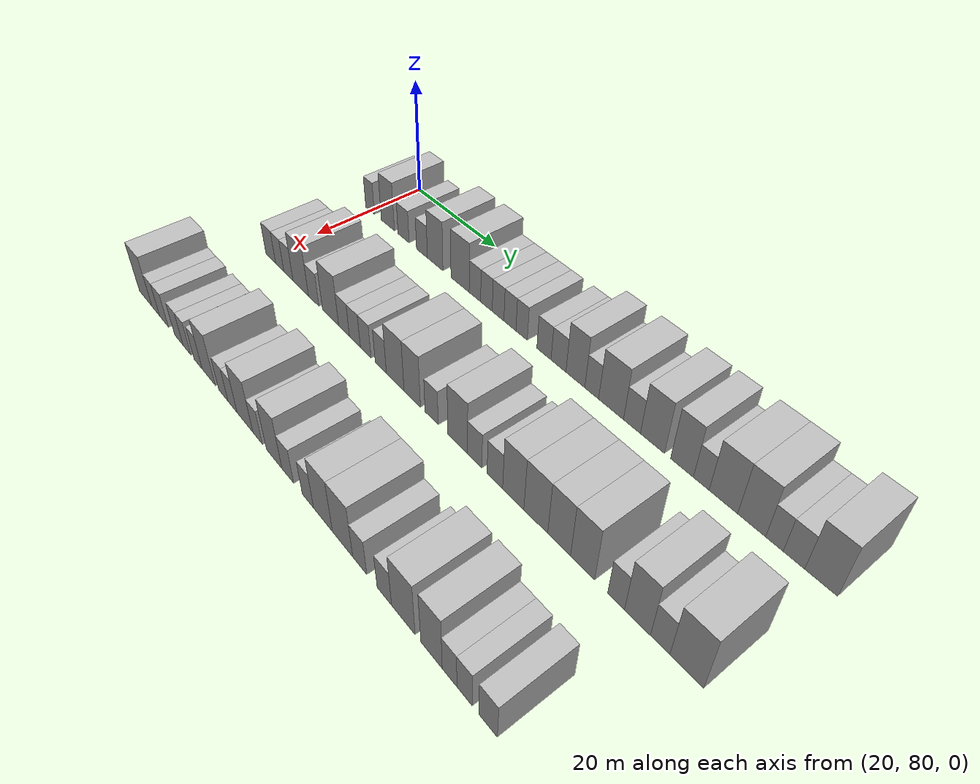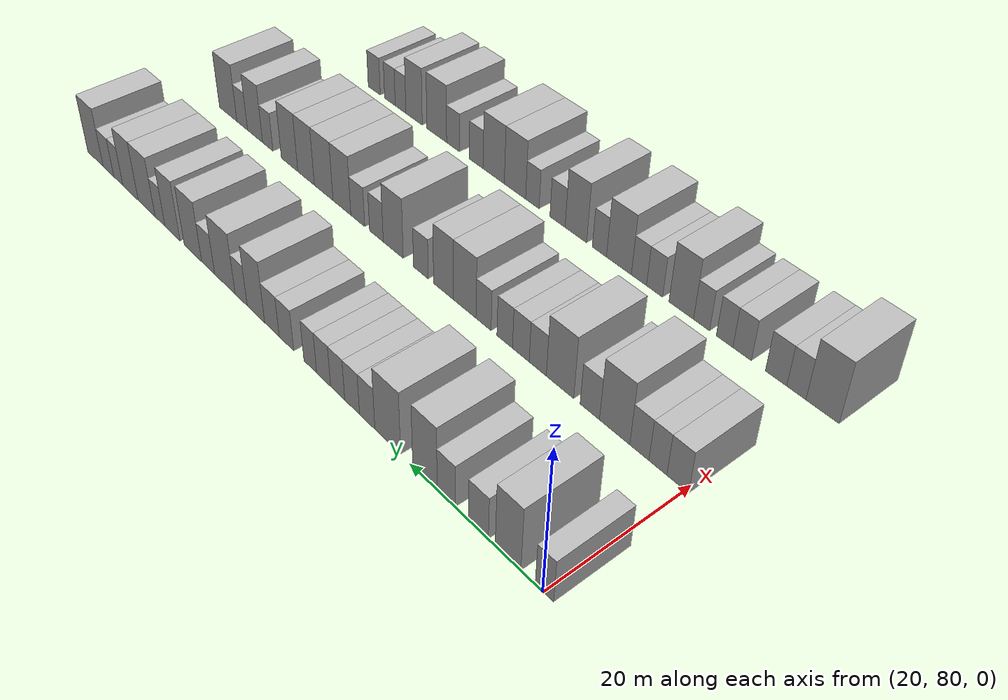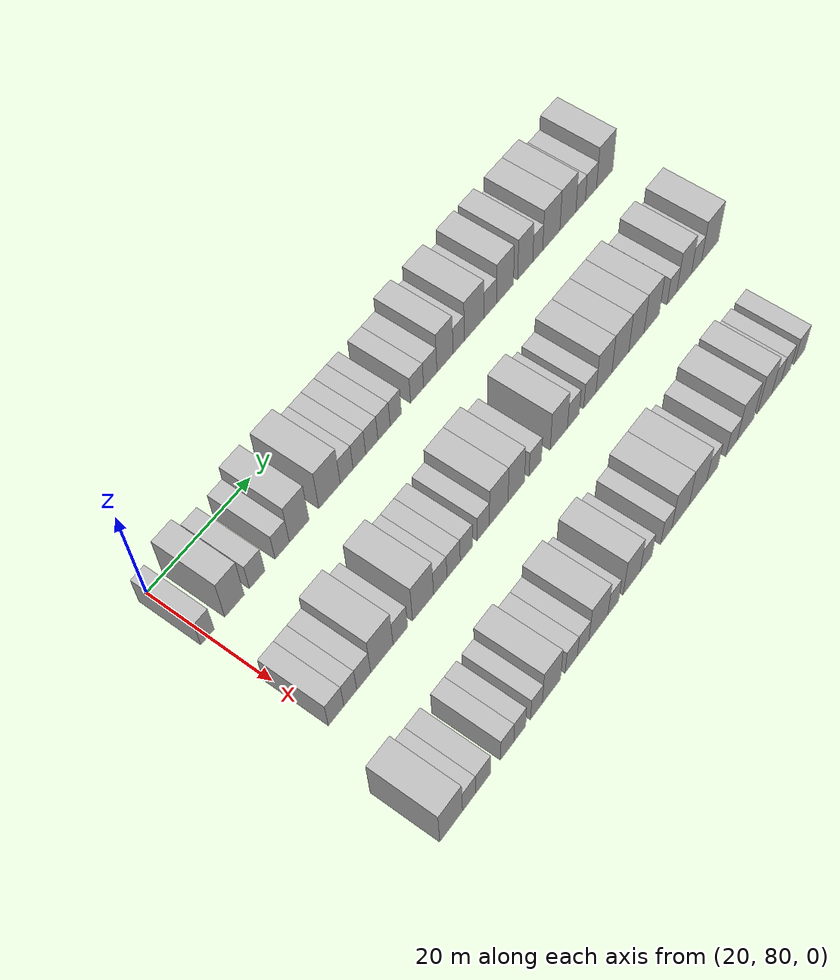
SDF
<sdf version="1.6">
 <world name="default">
  <model name="building_107">
   <static>1</static>
   <pose>25.0000 79.8684 0 0.000000 0.000000 0.000000</pose>
   <link name="link">
    <pose>0 0 3.00 0 0 0</pose>
    <collision name="collision"><geometry><box><size>10.0000 2.5165 6.0000</size></box></geometry></collision>
    <visual name="visual">
     <cast_shadows>0</cast_shadows>
     <geometry><box><size>10.0000 2.5165 6.0000</size></box></geometry>
     <material>
      <script>
       <uri>model://HANNAS_wall/materials/scripts</uri>
       <uri>model://HANNAS_wall/materials/textures</uri>
       <name>vrc/HANNAS_wall</name>
      </script>
     </material>
    </visual>
   </link>
  </model>
  <model name="building_108">
   <static>1</static>
   <pose>25.0000 84.9809 0 0.000000 0.000000 0.000000</pose>
   <link name="link">
    <pose>0 0 4.50 0 0 0</pose>
    <collision name="collision"><geometry><box><size>10.0000 3.7086 9.0000</size></box></geometry></collision>
    <visual name="visual">
     <cast_shadows>0</cast_shadows>
     <geometry><box><size>10.0000 3.7086 9.0000</size></box></geometry>
     <material>
      <script>
       <uri>model://HANNAS_wall/materials/scripts</uri>
       <uri>model://HANNAS_wall/materials/textures</uri>
       <name>vrc/HANNAS_wall</name>
      </script>
     </material>
    </visual>
   </link>
  </model>
  <model name="building_109">
   <static>1</static>
   <pose>25.0000 89.3344 0 0.000000 0.000000 0.000000</pose>
   <link name="link">
    <pose>0 0 3.00 0 0 0</pose>
    <collision name="collision"><geometry><box><size>10.0000 2.9984 6.0000</size></box></geometry></collision>
    <visual name="visual">
     <cast_shadows>0</cast_shadows>
     <geometry><box><size>10.0000 2.9984 6.0000</size></box></geometry>
     <material>
      <script>
       <uri>model://HANNAS_wall/materials/scripts</uri>
       <uri>model://HANNAS_wall/materials/textures</uri>
       <name>vrc/HANNAS_wall</name>
      </script>
     </material>
    </visual>
   </link>
  </model>
  <model name="building_110">
   <static>1</static>
   <pose>25.0000 94.2541 0 0.000000 0.000000 0.000000</pose>
   <link name="link">
    <pose>0 0 3.00 0 0 0</pose>
    <collision name="collision"><geometry><box><size>10.0000 2.8410 6.0000</size></box></geometry></collision>
    <visual name="visual">
     <cast_shadows>0</cast_shadows>
     <geometry><box><size>10.0000 2.8410 6.0000</size></box></geometry>
     <material>
      <script>
       <uri>model://HANNAS_wall/materials/scripts</uri>
       <uri>model://HANNAS_wall/materials/textures</uri>
       <name>vrc/HANNAS_wall</name>
      </script>
     </material>
    </visual>
   </link>
  </model>
  <model name="building_111">
   <static>1</static>
   <pose>25.0000 97.6436 0 0.000000 0.000000 0.000000</pose>
   <link name="link">
    <pose>0 0 4.50 0 0 0</pose>
    <collision name="collision"><geometry><box><size>10.0000 3.9379 9.0000</size></box></geometry></collision>
    <visual name="visual">
     <cast_shadows>0</cast_shadows>
     <geometry><box><size>10.0000 3.9379 9.0000</size></box></geometry>
     <material>
      <script>
       <uri>model://HANNAS_wall/materials/scripts</uri>
       <uri>model://HANNAS_wall/materials/textures</uri>
       <name>vrc/HANNAS_wall</name>
      </script>
     </material>
    </visual>
   </link>
  </model>
  <model name="building_112">
   <static>1</static>
   <pose>25.0000 103.8052 0 0.000000 0.000000 0.000000</pose>
   <link name="link">
    <pose>0 0 4.50 0 0 0</pose>
    <collision name="collision"><geometry><box><size>10.0000 4.3853 9.0000</size></box></geometry></collision>
    <visual name="visual">
     <cast_shadows>0</cast_shadows>
     <geometry><box><size>10.0000 4.3853 9.0000</size></box></geometry>
     <material>
      <script>
       <uri>model://HANNAS_wall/materials/scripts</uri>
       <uri>model://HANNAS_wall/materials/textures</uri>
       <name>vrc/HANNAS_wall</name>
      </script>
     </material>
    </visual>
   </link>
  </model>
  <model name="building_113">
   <static>1</static>
   <pose>25.0000 107.3430 0 0.000000 0.000000 0.000000</pose>
   <link name="link">
    <pose>0 0 3.00 0 0 0</pose>
    <collision name="collision"><geometry><box><size>10.0000 2.6902 6.0000</size></box></geometry></collision>
    <visual name="visual">
     <cast_shadows>0</cast_shadows>
     <geometry><box><size>10.0000 2.6902 6.0000</size></box></geometry>
     <material>
      <script>
       <uri>model://HANNAS_wall/materials/scripts</uri>
       <uri>model://HANNAS_wall/materials/textures</uri>
       <name>vrc/HANNAS_wall</name>
      </script>
     </material>
    </visual>
   </link>
  </model>
  <model name="building_114">
   <static>1</static>
   <pose>25.0000 110.0168 0 0.000000 0.000000 0.000000</pose>
   <link name="link">
    <pose>0 0 3.00 0 0 0</pose>
    <collision name="collision"><geometry><box><size>10.0000 2.6574 6.0000</size></box></geometry></collision>
    <visual name="visual">
     <cast_shadows>0</cast_shadows>
     <geometry><box><size>10.0000 2.6574 6.0000</size></box></geometry>
     <material>
      <script>
       <uri>model://HANNAS_wall/materials/scripts</uri>
       <uri>model://HANNAS_wall/materials/textures</uri>
       <name>vrc/HANNAS_wall</name>
      </script>
     </material>
    </visual>
   </link>
  </model>
  <model name="building_115">
   <static>1</static>
   <pose>25.0000 112.6450 0 0.000000 0.000000 0.000000</pose>
   <link name="link">
    <pose>0 0 3.00 0 0 0</pose>
    <collision name="collision"><geometry><box><size>10.0000 2.5992 6.0000</size></box></geometry></collision>
    <visual name="visual">
     <cast_shadows>0</cast_shadows>
     <geometry><box><size>10.0000 2.5992 6.0000</size></box></geometry>
     <material>
      <script>
       <uri>model://HANNAS_wall/materials/scripts</uri>
       <uri>model://HANNAS_wall/materials/textures</uri>
       <name>vrc/HANNAS_wall</name>
      </script>
     </material>
    </visual>
   </link>
  </model>
  <model name="building_116">
   <static>1</static>
   <pose>25.0000 115.2576 0 0.000000 0.000000 0.000000</pose>
   <link name="link">
    <pose>0 0 3.00 0 0 0</pose>
    <collision name="collision"><geometry><box><size>10.0000 2.6260 6.0000</size></box></geometry></collision>
    <visual name="visual">
     <cast_shadows>0</cast_shadows>
     <geometry><box><size>10.0000 2.6260 6.0000</size></box></geometry>
     <material>
      <script>
       <uri>model://HANNAS_wall/materials/scripts</uri>
       <uri>model://HANNAS_wall/materials/textures</uri>
       <name>vrc/HANNAS_wall</name>
      </script>
     </material>
    </visual>
   </link>
  </model>
  <model name="building_117">
   <static>1</static>
   <pose>25.0000 117.7822 0 0.000000 0.000000 0.000000</pose>
   <link name="link">
    <pose>0 0 3.00 0 0 0</pose>
    <collision name="collision"><geometry><box><size>10.0000 2.4232 6.0000</size></box></geometry></collision>
    <visual name="visual">
     <cast_shadows>0</cast_shadows>
     <geometry><box><size>10.0000 2.4232 6.0000</size></box></geometry>
     <material>
      <script>
       <uri>model://HANNAS_wall/materials/scripts</uri>
       <uri>model://HANNAS_wall/materials/textures</uri>
       <name>vrc/HANNAS_wall</name>
      </script>
     </material>
    </visual>
   </link>
  </model>
  <model name="building_118">
   <static>1</static>
   <pose>25.0000 122.4349 0 0.000000 0.000000 0.000000</pose>
   <link name="link">
    <pose>0 0 3.00 0 0 0</pose>
    <collision name="collision"><geometry><box><size>10.0000 2.8821 6.0000</size></box></geometry></collision>
    <visual name="visual">
     <cast_shadows>0</cast_shadows>
     <geometry><box><size>10.0000 2.8821 6.0000</size></box></geometry>
     <material>
      <script>
       <uri>model://HANNAS_wall/materials/scripts</uri>
       <uri>model://HANNAS_wall/materials/textures</uri>
       <name>vrc/HANNAS_wall</name>
      </script>
     </material>
    </visual>
   </link>
  </model>
  <model name="building_119">
   <static>1</static>
   <pose>25.0000 125.3614 0 0.000000 0.000000 0.000000</pose>
   <link name="link">
    <pose>0 0 3.00 0 0 0</pose>
    <collision name="collision"><geometry><box><size>10.0000 2.9710 6.0000</size></box></geometry></collision>
    <visual name="visual">
     <cast_shadows>0</cast_shadows>
     <geometry><box><size>10.0000 2.9710 6.0000</size></box></geometry>
     <material>
      <script>
       <uri>model://HANNAS_wall/materials/scripts</uri>
       <uri>model://HANNAS_wall/materials/textures</uri>
       <name>vrc/HANNAS_wall</name>
      </script>
     </material>
    </visual>
   </link>
  </model>
  <model name="building_120">
   <static>1</static>
   <pose>25.0000 128.6660 0 0.000000 0.000000 0.000000</pose>
   <link name="link">
    <pose>0 0 4.50 0 0 0</pose>
    <collision name="collision"><geometry><box><size>10.0000 3.6383 9.0000</size></box></geometry></collision>
    <visual name="visual">
     <cast_shadows>0</cast_shadows>
     <geometry><box><size>10.0000 3.6383 9.0000</size></box></geometry>
     <material>
      <script>
       <uri>model://HANNAS_wall/materials/scripts</uri>
       <uri>model://HANNAS_wall/materials/textures</uri>
       <name>vrc/HANNAS_wall</name>
      </script>
     </material>
    </visual>
   </link>
  </model>
  <model name="building_121">
   <static>1</static>
   <pose>25.0000 131.7746 0 0.000000 0.000000 0.000000</pose>
   <link name="link">
    <pose>0 0 3.00 0 0 0</pose>
    <collision name="collision"><geometry><box><size>10.0000 2.5788 6.0000</size></box></geometry></collision>
    <visual name="visual">
     <cast_shadows>0</cast_shadows>
     <geometry><box><size>10.0000 2.5788 6.0000</size></box></geometry>
     <material>
      <script>
       <uri>model://HANNAS_wall/materials/scripts</uri>
       <uri>model://HANNAS_wall/materials/textures</uri>
       <name>vrc/HANNAS_wall</name>
      </script>
     </material>
    </visual>
   </link>
  </model>
  <model name="building_122">
   <static>1</static>
   <pose>25.0000 135.3098 0 0.000000 0.000000 0.000000</pose>
   <link name="link">
    <pose>0 0 4.50 0 0 0</pose>
    <collision name="collision"><geometry><box><size>10.0000 4.4916 9.0000</size></box></geometry></collision>
    <visual name="visual">
     <cast_shadows>0</cast_shadows>
     <geometry><box><size>10.0000 4.4916 9.0000</size></box></geometry>
     <material>
      <script>
       <uri>model://HANNAS_wall/materials/scripts</uri>
       <uri>model://HANNAS_wall/materials/textures</uri>
       <name>vrc/HANNAS_wall</name>
      </script>
     </material>
    </visual>
   </link>
  </model>
  <model name="building_123">
   <static>1</static>
   <pose>25.0000 139.0275 0 0.000000 0.000000 0.000000</pose>
   <link name="link">
    <pose>0 0 3.00 0 0 0</pose>
    <collision name="collision"><geometry><box><size>10.0000 2.9438 6.0000</size></box></geometry></collision>
    <visual name="visual">
     <cast_shadows>0</cast_shadows>
     <geometry><box><size>10.0000 2.9438 6.0000</size></box></geometry>
     <material>
      <script>
       <uri>model://HANNAS_wall/materials/scripts</uri>
       <uri>model://HANNAS_wall/materials/textures</uri>
       <name>vrc/HANNAS_wall</name>
      </script>
     </material>
    </visual>
   </link>
  </model>
  <model name="building_124">
   <static>1</static>
   <pose>25.0000 142.5194 0 0.000000 0.000000 0.000000</pose>
   <link name="link">
    <pose>0 0 4.50 0 0 0</pose>
    <collision name="collision"><geometry><box><size>10.0000 4.0399 9.0000</size></box></geometry></collision>
    <visual name="visual">
     <cast_shadows>0</cast_shadows>
     <geometry><box><size>10.0000 4.0399 9.0000</size></box></geometry>
     <material>
      <script>
       <uri>model://HANNAS_wall/materials/scripts</uri>
       <uri>model://HANNAS_wall/materials/textures</uri>
       <name>vrc/HANNAS_wall</name>
      </script>
     </material>
    </visual>
   </link>
  </model>
  <model name="building_125">
   <static>1</static>
   <pose>25.0000 147.3535 0 0.000000 0.000000 0.000000</pose>
   <link name="link">
    <pose>0 0 4.50 0 0 0</pose>
    <collision name="collision"><geometry><box><size>10.0000 3.6283 9.0000</size></box></geometry></collision>
    <visual name="visual">
     <cast_shadows>0</cast_shadows>
     <geometry><box><size>10.0000 3.6283 9.0000</size></box></geometry>
     <material>
      <script>
       <uri>model://HANNAS_wall/materials/scripts</uri>
       <uri>model://HANNAS_wall/materials/textures</uri>
       <name>vrc/HANNAS_wall</name>
      </script>
     </material>
    </visual>
   </link>
  </model>
  <model name="building_126">
   <static>1</static>
   <pose>25.0000 150.3799 0 0.000000 0.000000 0.000000</pose>
   <link name="link">
    <pose>0 0 3.00 0 0 0</pose>
    <collision name="collision"><geometry><box><size>10.0000 2.4246 6.0000</size></box></geometry></collision>
    <visual name="visual">
     <cast_shadows>0</cast_shadows>
     <geometry><box><size>10.0000 2.4246 6.0000</size></box></geometry>
     <material>
      <script>
       <uri>model://HANNAS_wall/materials/scripts</uri>
       <uri>model://HANNAS_wall/materials/textures</uri>
       <name>vrc/HANNAS_wall</name>
      </script>
     </material>
    </visual>
   </link>
  </model>
  <model name="building_127">
   <static>1</static>
   <pose>25.0000 153.7157 0 0.000000 0.000000 0.000000</pose>
   <link name="link">
    <pose>0 0 4.50 0 0 0</pose>
    <collision name="collision"><geometry><box><size>10.0000 4.2469 9.0000</size></box></geometry></collision>
    <visual name="visual">
     <cast_shadows>0</cast_shadows>
     <geometry><box><size>10.0000 4.2469 9.0000</size></box></geometry>
     <material>
      <script>
       <uri>model://HANNAS_wall/materials/scripts</uri>
       <uri>model://HANNAS_wall/materials/textures</uri>
       <name>vrc/HANNAS_wall</name>
      </script>
     </material>
    </visual>
   </link>
  </model>
  <model name="building_128">
   <static>1</static>
   <pose>25.0000 157.8291 0 0.000000 0.000000 0.000000</pose>
   <link name="link">
    <pose>0 0 4.50 0 0 0</pose>
    <collision name="collision"><geometry><box><size>10.0000 3.9800 9.0000</size></box></geometry></collision>
    <visual name="visual">
     <cast_shadows>0</cast_shadows>
     <geometry><box><size>10.0000 3.9800 9.0000</size></box></geometry>
     <material>
      <script>
       <uri>model://HANNAS_wall/materials/scripts</uri>
       <uri>model://HANNAS_wall/materials/textures</uri>
       <name>vrc/HANNAS_wall</name>
      </script>
     </material>
    </visual>
   </link>
  </model>
  <model name="building_129">
   <static>1</static>
   <pose>25.0000 161.0231 0 0.000000 0.000000 0.000000</pose>
   <link name="link">
    <pose>0 0 3.00 0 0 0</pose>
    <collision name="collision"><geometry><box><size>10.0000 2.4081 6.0000</size></box></geometry></collision>
    <visual name="visual">
     <cast_shadows>0</cast_shadows>
     <geometry><box><size>10.0000 2.4081 6.0000</size></box></geometry>
     <material>
      <script>
       <uri>model://HANNAS_wall/materials/scripts</uri>
       <uri>model://HANNAS_wall/materials/textures</uri>
       <name>vrc/HANNAS_wall</name>
      </script>
     </material>
    </visual>
   </link>
  </model>
  <model name="building_130">
   <static>1</static>
   <pose>25.0000 163.6570 0 0.000000 0.000000 0.000000</pose>
   <link name="link">
    <pose>0 0 3.00 0 0 0</pose>
    <collision name="collision"><geometry><box><size>10.0000 2.8596 6.0000</size></box></geometry></collision>
    <visual name="visual">
     <cast_shadows>0</cast_shadows>
     <geometry><box><size>10.0000 2.8596 6.0000</size></box></geometry>
     <material>
      <script>
       <uri>model://HANNAS_wall/materials/scripts</uri>
       <uri>model://HANNAS_wall/materials/textures</uri>
       <name>vrc/HANNAS_wall</name>
      </script>
     </material>
    </visual>
   </link>
  </model>
  <model name="building_131">
   <static>1</static>
   <pose>25.0000 167.1961 0 0.000000 0.000000 0.000000</pose>
   <link name="link">
    <pose>0 0 4.50 0 0 0</pose>
    <collision name="collision"><geometry><box><size>10.0000 4.2186 9.0000</size></box></geometry></collision>
    <visual name="visual">
     <cast_shadows>0</cast_shadows>
     <geometry><box><size>10.0000 4.2186 9.0000</size></box></geometry>
     <material>
      <script>
       <uri>model://HANNAS_wall/materials/scripts</uri>
       <uri>model://HANNAS_wall/materials/textures</uri>
       <name>vrc/HANNAS_wall</name>
      </script>
     </material>
    </visual>
   </link>
  </model>
  <model name="building_282">
   <static>1</static>
   <pose>44.0000 80.9962 0 0.000000 0.000000 0.000000</pose>
   <link name="link">
    <pose>0 0 3.00 0 0 0</pose>
    <collision name="collision"><geometry><box><size>10.0000 2.9813 6.0000</size></box></geometry></collision>
    <visual name="visual">
     <cast_shadows>0</cast_shadows>
     <geometry><box><size>10.0000 2.9813 6.0000</size></box></geometry>
     <material>
      <script>
       <uri>model://HANNAS_wall/materials/scripts</uri>
       <uri>model://HANNAS_wall/materials/textures</uri>
       <name>vrc/HANNAS_wall</name>
      </script>
     </material>
    </visual>
   </link>
  </model>
  <model name="building_283">
   <static>1</static>
   <pose>44.0000 83.7357 0 0.000000 0.000000 0.000000</pose>
   <link name="link">
    <pose>0 0 3.00 0 0 0</pose>
    <collision name="collision"><geometry><box><size>10.0000 2.4975 6.0000</size></box></geometry></collision>
    <visual name="visual">
     <cast_shadows>0</cast_shadows>
     <geometry><box><size>10.0000 2.4975 6.0000</size></box></geometry>
     <material>
      <script>
       <uri>model://HANNAS_wall/materials/scripts</uri>
       <uri>model://HANNAS_wall/materials/textures</uri>
       <name>vrc/HANNAS_wall</name>
      </script>
     </material>
    </visual>
   </link>
  </model>
  <model name="building_284">
   <static>1</static>
   <pose>44.0000 86.3479 0 0.000000 0.000000 0.000000</pose>
   <link name="link">
    <pose>0 0 3.00 0 0 0</pose>
    <collision name="collision"><geometry><box><size>10.0000 2.7270 6.0000</size></box></geometry></collision>
    <visual name="visual">
     <cast_shadows>0</cast_shadows>
     <geometry><box><size>10.0000 2.7270 6.0000</size></box></geometry>
     <material>
      <script>
       <uri>model://HANNAS_wall/materials/scripts</uri>
       <uri>model://HANNAS_wall/materials/textures</uri>
       <name>vrc/HANNAS_wall</name>
      </script>
     </material>
    </visual>
   </link>
  </model>
  <model name="building_285">
   <static>1</static>
   <pose>44.0000 89.9405 0 0.000000 0.000000 0.000000</pose>
   <link name="link">
    <pose>0 0 4.50 0 0 0</pose>
    <collision name="collision"><geometry><box><size>10.0000 4.4581 9.0000</size></box></geometry></collision>
    <visual name="visual">
     <cast_shadows>0</cast_shadows>
     <geometry><box><size>10.0000 4.4581 9.0000</size></box></geometry>
     <material>
      <script>
       <uri>model://HANNAS_wall/materials/scripts</uri>
       <uri>model://HANNAS_wall/materials/textures</uri>
       <name>vrc/HANNAS_wall</name>
      </script>
     </material>
    </visual>
   </link>
  </model>
  <model name="building_286">
   <static>1</static>
   <pose>44.0000 93.6347 0 0.000000 0.000000 0.000000</pose>
   <link name="link">
    <pose>0 0 3.00 0 0 0</pose>
    <collision name="collision"><geometry><box><size>10.0000 2.9304 6.0000</size></box></geometry></collision>
    <visual name="visual">
     <cast_shadows>0</cast_shadows>
     <geometry><box><size>10.0000 2.9304 6.0000</size></box></geometry>
     <material>
      <script>
       <uri>model://HANNAS_wall/materials/scripts</uri>
       <uri>model://HANNAS_wall/materials/textures</uri>
       <name>vrc/HANNAS_wall</name>
      </script>
     </material>
    </visual>
   </link>
  </model>
  <model name="building_287">
   <static>1</static>
   <pose>44.0000 98.2600 0 0.000000 0.000000 0.000000</pose>
   <link name="link">
    <pose>0 0 4.50 0 0 0</pose>
    <collision name="collision"><geometry><box><size>10.0000 4.3201 9.0000</size></box></geometry></collision>
    <visual name="visual">
     <cast_shadows>0</cast_shadows>
     <geometry><box><size>10.0000 4.3201 9.0000</size></box></geometry>
     <material>
      <script>
       <uri>model://HANNAS_wall/materials/scripts</uri>
       <uri>model://HANNAS_wall/materials/textures</uri>
       <name>vrc/HANNAS_wall</name>
      </script>
     </material>
    </visual>
   </link>
  </model>
  <model name="building_288">
   <static>1</static>
   <pose>44.0000 101.8132 0 0.000000 0.000000 0.000000</pose>
   <link name="link">
    <pose>0 0 3.00 0 0 0</pose>
    <collision name="collision"><geometry><box><size>10.0000 2.7863 6.0000</size></box></geometry></collision>
    <visual name="visual">
     <cast_shadows>0</cast_shadows>
     <geometry><box><size>10.0000 2.7863 6.0000</size></box></geometry>
     <material>
      <script>
       <uri>model://HANNAS_wall/materials/scripts</uri>
       <uri>model://HANNAS_wall/materials/textures</uri>
       <name>vrc/HANNAS_wall</name>
      </script>
     </material>
    </visual>
   </link>
  </model>
  <model name="building_289">
   <static>1</static>
   <pose>44.0000 104.5954 0 0.000000 0.000000 0.000000</pose>
   <link name="link">
    <pose>0 0 3.00 0 0 0</pose>
    <collision name="collision"><geometry><box><size>10.0000 2.7783 6.0000</size></box></geometry></collision>
    <visual name="visual">
     <cast_shadows>0</cast_shadows>
     <geometry><box><size>10.0000 2.7783 6.0000</size></box></geometry>
     <material>
      <script>
       <uri>model://HANNAS_wall/materials/scripts</uri>
       <uri>model://HANNAS_wall/materials/textures</uri>
       <name>vrc/HANNAS_wall</name>
      </script>
     </material>
    </visual>
   </link>
  </model>
  <model name="building_290">
   <static>1</static>
   <pose>44.0000 107.3019 0 0.000000 0.000000 0.000000</pose>
   <link name="link">
    <pose>0 0 3.00 0 0 0</pose>
    <collision name="collision"><geometry><box><size>10.0000 2.6348 6.0000</size></box></geometry></collision>
    <visual name="visual">
     <cast_shadows>0</cast_shadows>
     <geometry><box><size>10.0000 2.6348 6.0000</size></box></geometry>
     <material>
      <script>
       <uri>model://HANNAS_wall/materials/scripts</uri>
       <uri>model://HANNAS_wall/materials/textures</uri>
       <name>vrc/HANNAS_wall</name>
      </script>
     </material>
    </visual>
   </link>
  </model>
  <model name="building_291">
   <static>1</static>
   <pose>44.0000 110.9422 0 0.000000 0.000000 0.000000</pose>
   <link name="link">
    <pose>0 0 3.00 0 0 0</pose>
    <collision name="collision"><geometry><box><size>10.0000 2.6457 6.0000</size></box></geometry></collision>
    <visual name="visual">
     <cast_shadows>0</cast_shadows>
     <geometry><box><size>10.0000 2.6457 6.0000</size></box></geometry>
     <material>
      <script>
       <uri>model://HANNAS_wall/materials/scripts</uri>
       <uri>model://HANNAS_wall/materials/textures</uri>
       <name>vrc/HANNAS_wall</name>
      </script>
     </material>
    </visual>
   </link>
  </model>
  <model name="building_292">
   <static>1</static>
   <pose>44.0000 114.3027 0 0.000000 0.000000 0.000000</pose>
   <link name="link">
    <pose>0 0 4.50 0 0 0</pose>
    <collision name="collision"><geometry><box><size>10.0000 4.0754 9.0000</size></box></geometry></collision>
    <visual name="visual">
     <cast_shadows>0</cast_shadows>
     <geometry><box><size>10.0000 4.0754 9.0000</size></box></geometry>
     <material>
      <script>
       <uri>model://HANNAS_wall/materials/scripts</uri>
       <uri>model://HANNAS_wall/materials/textures</uri>
       <name>vrc/HANNAS_wall</name>
      </script>
     </material>
    </visual>
   </link>
  </model>
  <model name="building_293">
   <static>1</static>
   <pose>44.0000 118.1617 0 0.000000 0.000000 0.000000</pose>
   <link name="link">
    <pose>0 0 4.50 0 0 0</pose>
    <collision name="collision"><geometry><box><size>10.0000 3.6427 9.0000</size></box></geometry></collision>
    <visual name="visual">
     <cast_shadows>0</cast_shadows>
     <geometry><box><size>10.0000 3.6427 9.0000</size></box></geometry>
     <material>
      <script>
       <uri>model://HANNAS_wall/materials/scripts</uri>
       <uri>model://HANNAS_wall/materials/textures</uri>
       <name>vrc/HANNAS_wall</name>
      </script>
     </material>
    </visual>
   </link>
  </model>
  <model name="building_294">
   <static>1</static>
   <pose>44.0000 122.3829 0 0.000000 0.000000 0.000000</pose>
   <link name="link">
    <pose>0 0 3.00 0 0 0</pose>
    <collision name="collision"><geometry><box><size>10.0000 2.7997 6.0000</size></box></geometry></collision>
    <visual name="visual">
     <cast_shadows>0</cast_shadows>
     <geometry><box><size>10.0000 2.7997 6.0000</size></box></geometry>
     <material>
      <script>
       <uri>model://HANNAS_wall/materials/scripts</uri>
       <uri>model://HANNAS_wall/materials/textures</uri>
       <name>vrc/HANNAS_wall</name>
      </script>
     </material>
    </visual>
   </link>
  </model>
  <model name="building_295">
   <static>1</static>
   <pose>44.0000 127.7653 0 0.000000 0.000000 0.000000</pose>
   <link name="link">
    <pose>0 0 4.50 0 0 0</pose>
    <collision name="collision"><geometry><box><size>10.0000 3.9652 9.0000</size></box></geometry></collision>
    <visual name="visual">
     <cast_shadows>0</cast_shadows>
     <geometry><box><size>10.0000 3.9652 9.0000</size></box></geometry>
     <material>
      <script>
       <uri>model://HANNAS_wall/materials/scripts</uri>
       <uri>model://HANNAS_wall/materials/textures</uri>
       <name>vrc/HANNAS_wall</name>
      </script>
     </material>
    </visual>
   </link>
  </model>
  <model name="building_296">
   <static>1</static>
   <pose>44.0000 131.1392 0 0.000000 0.000000 0.000000</pose>
   <link name="link">
    <pose>0 0 3.00 0 0 0</pose>
    <collision name="collision"><geometry><box><size>10.0000 2.7825 6.0000</size></box></geometry></collision>
    <visual name="visual">
     <cast_shadows>0</cast_shadows>
     <geometry><box><size>10.0000 2.7825 6.0000</size></box></geometry>
     <material>
      <script>
       <uri>model://HANNAS_wall/materials/scripts</uri>
       <uri>model://HANNAS_wall/materials/textures</uri>
       <name>vrc/HANNAS_wall</name>
      </script>
     </material>
    </visual>
   </link>
  </model>
  <model name="building_297">
   <static>1</static>
   <pose>44.0000 134.9833 0 0.000000 0.000000 0.000000</pose>
   <link name="link">
    <pose>0 0 3.00 0 0 0</pose>
    <collision name="collision"><geometry><box><size>10.0000 2.9057 6.0000</size></box></geometry></collision>
    <visual name="visual">
     <cast_shadows>0</cast_shadows>
     <geometry><box><size>10.0000 2.9057 6.0000</size></box></geometry>
     <material>
      <script>
       <uri>model://HANNAS_wall/materials/scripts</uri>
       <uri>model://HANNAS_wall/materials/textures</uri>
       <name>vrc/HANNAS_wall</name>
      </script>
     </material>
    </visual>
   </link>
  </model>
  <model name="building_298">
   <static>1</static>
   <pose>44.0000 138.3470 0 0.000000 0.000000 0.000000</pose>
   <link name="link">
    <pose>0 0 4.50 0 0 0</pose>
    <collision name="collision"><geometry><box><size>10.0000 3.8218 9.0000</size></box></geometry></collision>
    <visual name="visual">
     <cast_shadows>0</cast_shadows>
     <geometry><box><size>10.0000 3.8218 9.0000</size></box></geometry>
     <material>
      <script>
       <uri>model://HANNAS_wall/materials/scripts</uri>
       <uri>model://HANNAS_wall/materials/textures</uri>
       <name>vrc/HANNAS_wall</name>
      </script>
     </material>
    </visual>
   </link>
  </model>
  <model name="building_299">
   <static>1</static>
   <pose>44.0000 142.3159 0 0.000000 0.000000 0.000000</pose>
   <link name="link">
    <pose>0 0 4.50 0 0 0</pose>
    <collision name="collision"><geometry><box><size>10.0000 4.1161 9.0000</size></box></geometry></collision>
    <visual name="visual">
     <cast_shadows>0</cast_shadows>
     <geometry><box><size>10.0000 4.1161 9.0000</size></box></geometry>
     <material>
      <script>
       <uri>model://HANNAS_wall/materials/scripts</uri>
       <uri>model://HANNAS_wall/materials/textures</uri>
       <name>vrc/HANNAS_wall</name>
      </script>
     </material>
    </visual>
   </link>
  </model>
  <model name="building_300">
   <static>1</static>
   <pose>44.0000 146.2532 0 0.000000 0.000000 0.000000</pose>
   <link name="link">
    <pose>0 0 4.50 0 0 0</pose>
    <collision name="collision"><geometry><box><size>10.0000 3.7584 9.0000</size></box></geometry></collision>
    <visual name="visual">
     <cast_shadows>0</cast_shadows>
     <geometry><box><size>10.0000 3.7584 9.0000</size></box></geometry>
     <material>
      <script>
       <uri>model://HANNAS_wall/materials/scripts</uri>
       <uri>model://HANNAS_wall/materials/textures</uri>
       <name>vrc/HANNAS_wall</name>
      </script>
     </material>
    </visual>
   </link>
  </model>
  <model name="building_301">
   <static>1</static>
   <pose>44.0000 150.0388 0 0.000000 0.000000 0.000000</pose>
   <link name="link">
    <pose>0 0 4.50 0 0 0</pose>
    <collision name="collision"><geometry><box><size>10.0000 3.8128 9.0000</size></box></geometry></collision>
    <visual name="visual">
     <cast_shadows>0</cast_shadows>
     <geometry><box><size>10.0000 3.8128 9.0000</size></box></geometry>
     <material>
      <script>
       <uri>model://HANNAS_wall/materials/scripts</uri>
       <uri>model://HANNAS_wall/materials/textures</uri>
       <name>vrc/HANNAS_wall</name>
      </script>
     </material>
    </visual>
   </link>
  </model>
  <model name="building_302">
   <static>1</static>
   <pose>44.0000 155.1900 0 0.000000 0.000000 0.000000</pose>
   <link name="link">
    <pose>0 0 3.00 0 0 0</pose>
    <collision name="collision"><geometry><box><size>10.0000 2.4897 6.0000</size></box></geometry></collision>
    <visual name="visual">
     <cast_shadows>0</cast_shadows>
     <geometry><box><size>10.0000 2.4897 6.0000</size></box></geometry>
     <material>
      <script>
       <uri>model://HANNAS_wall/materials/scripts</uri>
       <uri>model://HANNAS_wall/materials/textures</uri>
       <name>vrc/HANNAS_wall</name>
      </script>
     </material>
    </visual>
   </link>
  </model>
  <model name="building_303">
   <static>1</static>
   <pose>44.0000 158.2894 0 0.000000 0.000000 0.000000</pose>
   <link name="link">
    <pose>0 0 4.50 0 0 0</pose>
    <collision name="collision"><geometry><box><size>10.0000 3.7091 9.0000</size></box></geometry></collision>
    <visual name="visual">
     <cast_shadows>0</cast_shadows>
     <geometry><box><size>10.0000 3.7091 9.0000</size></box></geometry>
     <material>
      <script>
       <uri>model://HANNAS_wall/materials/scripts</uri>
       <uri>model://HANNAS_wall/materials/textures</uri>
       <name>vrc/HANNAS_wall</name>
      </script>
     </material>
    </visual>
   </link>
  </model>
  <model name="building_304">
   <static>1</static>
   <pose>44.0000 161.4726 0 0.000000 0.000000 0.000000</pose>
   <link name="link">
    <pose>0 0 3.00 0 0 0</pose>
    <collision name="collision"><geometry><box><size>10.0000 2.6573 6.0000</size></box></geometry></collision>
    <visual name="visual">
     <cast_shadows>0</cast_shadows>
     <geometry><box><size>10.0000 2.6573 6.0000</size></box></geometry>
     <material>
      <script>
       <uri>model://HANNAS_wall/materials/scripts</uri>
       <uri>model://HANNAS_wall/materials/textures</uri>
       <name>vrc/HANNAS_wall</name>
      </script>
     </material>
    </visual>
   </link>
  </model>
  <model name="building_305">
   <static>1</static>
   <pose>44.0000 165.0303 0 0.000000 0.000000 0.000000</pose>
   <link name="link">
    <pose>0 0 4.50 0 0 0</pose>
    <collision name="collision"><geometry><box><size>10.0000 4.4582 9.0000</size></box></geometry></collision>
    <visual name="visual">
     <cast_shadows>0</cast_shadows>
     <geometry><box><size>10.0000 4.4582 9.0000</size></box></geometry>
     <material>
      <script>
       <uri>model://HANNAS_wall/materials/scripts</uri>
       <uri>model://HANNAS_wall/materials/textures</uri>
       <name>vrc/HANNAS_wall</name>
      </script>
     </material>
    </visual>
   </link>
  </model>
  <model name="building_469">
   <static>1</static>
   <pose>63.0000 78.1149 0 0.000000 0.000000 0.000000</pose>
   <link name="link">
    <pose>0 0 4.50 0 0 0</pose>
    <collision name="collision"><geometry><box><size>10.0000 4.4009 9.0000</size></box></geometry></collision>
    <visual name="visual">
     <cast_shadows>0</cast_shadows>
     <geometry><box><size>10.0000 4.4009 9.0000</size></box></geometry>
     <material>
      <script>
       <uri>model://HANNAS_wall/materials/scripts</uri>
       <uri>model://HANNAS_wall/materials/textures</uri>
       <name>vrc/HANNAS_wall</name>
      </script>
     </material>
    </visual>
   </link>
  </model>
  <model name="building_470">
   <static>1</static>
   <pose>63.0000 81.6224 0 0.000000 0.000000 0.000000</pose>
   <link name="link">
    <pose>0 0 3.00 0 0 0</pose>
    <collision name="collision"><geometry><box><size>10.0000 2.6140 6.0000</size></box></geometry></collision>
    <visual name="visual">
     <cast_shadows>0</cast_shadows>
     <geometry><box><size>10.0000 2.6140 6.0000</size></box></geometry>
     <material>
      <script>
       <uri>model://HANNAS_wall/materials/scripts</uri>
       <uri>model://HANNAS_wall/materials/textures</uri>
       <name>vrc/HANNAS_wall</name>
      </script>
     </material>
    </visual>
   </link>
  </model>
  <model name="building_471">
   <static>1</static>
   <pose>63.0000 84.4114 0 0.000000 0.000000 0.000000</pose>
   <link name="link">
    <pose>0 0 3.00 0 0 0</pose>
    <collision name="collision"><geometry><box><size>10.0000 2.9640 6.0000</size></box></geometry></collision>
    <visual name="visual">
     <cast_shadows>0</cast_shadows>
     <geometry><box><size>10.0000 2.9640 6.0000</size></box></geometry>
     <material>
      <script>
       <uri>model://HANNAS_wall/materials/scripts</uri>
       <uri>model://HANNAS_wall/materials/textures</uri>
       <name>vrc/HANNAS_wall</name>
      </script>
     </material>
    </visual>
   </link>
  </model>
  <model name="building_472">
   <static>1</static>
   <pose>63.0000 89.2351 0 0.000000 0.000000 0.000000</pose>
   <link name="link">
    <pose>0 0 3.00 0 0 0</pose>
    <collision name="collision"><geometry><box><size>10.0000 2.6835 6.0000</size></box></geometry></collision>
    <visual name="visual">
     <cast_shadows>0</cast_shadows>
     <geometry><box><size>10.0000 2.6835 6.0000</size></box></geometry>
     <material>
      <script>
       <uri>model://HANNAS_wall/materials/scripts</uri>
       <uri>model://HANNAS_wall/materials/textures</uri>
       <name>vrc/HANNAS_wall</name>
      </script>
     </material>
    </visual>
   </link>
  </model>
  <model name="building_473">
   <static>1</static>
   <pose>63.0000 91.7998 0 0.000000 0.000000 0.000000</pose>
   <link name="link">
    <pose>0 0 3.00 0 0 0</pose>
    <collision name="collision"><geometry><box><size>10.0000 2.4459 6.0000</size></box></geometry></collision>
    <visual name="visual">
     <cast_shadows>0</cast_shadows>
     <geometry><box><size>10.0000 2.4459 6.0000</size></box></geometry>
     <material>
      <script>
       <uri>model://HANNAS_wall/materials/scripts</uri>
       <uri>model://HANNAS_wall/materials/textures</uri>
       <name>vrc/HANNAS_wall</name>
      </script>
     </material>
    </visual>
   </link>
  </model>
  <model name="building_474">
   <static>1</static>
   <pose>63.0000 95.2432 0 0.000000 0.000000 0.000000</pose>
   <link name="link">
    <pose>0 0 3.00 0 0 0</pose>
    <collision name="collision"><geometry><box><size>10.0000 2.4409 6.0000</size></box></geometry></collision>
    <visual name="visual">
     <cast_shadows>0</cast_shadows>
     <geometry><box><size>10.0000 2.4409 6.0000</size></box></geometry>
     <material>
      <script>
       <uri>model://HANNAS_wall/materials/scripts</uri>
       <uri>model://HANNAS_wall/materials/textures</uri>
       <name>vrc/HANNAS_wall</name>
      </script>
     </material>
    </visual>
   </link>
  </model>
  <model name="building_475">
   <static>1</static>
   <pose>63.0000 98.3819 0 0.000000 0.000000 0.000000</pose>
   <link name="link">
    <pose>0 0 4.50 0 0 0</pose>
    <collision name="collision"><geometry><box><size>10.0000 3.8364 9.0000</size></box></geometry></collision>
    <visual name="visual">
     <cast_shadows>0</cast_shadows>
     <geometry><box><size>10.0000 3.8364 9.0000</size></box></geometry>
     <material>
      <script>
       <uri>model://HANNAS_wall/materials/scripts</uri>
       <uri>model://HANNAS_wall/materials/textures</uri>
       <name>vrc/HANNAS_wall</name>
      </script>
     </material>
    </visual>
   </link>
  </model>
  <model name="building_476">
   <static>1</static>
   <pose>63.0000 102.5937 0 0.000000 0.000000 0.000000</pose>
   <link name="link">
    <pose>0 0 3.00 0 0 0</pose>
    <collision name="collision"><geometry><box><size>10.0000 2.5873 6.0000</size></box></geometry></collision>
    <visual name="visual">
     <cast_shadows>0</cast_shadows>
     <geometry><box><size>10.0000 2.5873 6.0000</size></box></geometry>
     <material>
      <script>
       <uri>model://HANNAS_wall/materials/scripts</uri>
       <uri>model://HANNAS_wall/materials/textures</uri>
       <name>vrc/HANNAS_wall</name>
      </script>
     </material>
    </visual>
   </link>
  </model>
  <model name="building_477">
   <static>1</static>
   <pose>63.0000 105.1339 0 0.000000 0.000000 0.000000</pose>
   <link name="link">
    <pose>0 0 3.00 0 0 0</pose>
    <collision name="collision"><geometry><box><size>10.0000 2.4930 6.0000</size></box></geometry></collision>
    <visual name="visual">
     <cast_shadows>0</cast_shadows>
     <geometry><box><size>10.0000 2.4930 6.0000</size></box></geometry>
     <material>
      <script>
       <uri>model://HANNAS_wall/materials/scripts</uri>
       <uri>model://HANNAS_wall/materials/textures</uri>
       <name>vrc/HANNAS_wall</name>
      </script>
     </material>
    </visual>
   </link>
  </model>
  <model name="building_478">
   <static>1</static>
   <pose>63.0000 108.4697 0 0.000000 0.000000 0.000000</pose>
   <link name="link">
    <pose>0 0 4.50 0 0 0</pose>
    <collision name="collision"><geometry><box><size>10.0000 4.1787 9.0000</size></box></geometry></collision>
    <visual name="visual">
     <cast_shadows>0</cast_shadows>
     <geometry><box><size>10.0000 4.1787 9.0000</size></box></geometry>
     <material>
      <script>
       <uri>model://HANNAS_wall/materials/scripts</uri>
       <uri>model://HANNAS_wall/materials/textures</uri>
       <name>vrc/HANNAS_wall</name>
      </script>
     </material>
    </visual>
   </link>
  </model>
  <model name="building_479">
   <static>1</static>
   <pose>63.0000 111.7744 0 0.000000 0.000000 0.000000</pose>
   <link name="link">
    <pose>0 0 3.00 0 0 0</pose>
    <collision name="collision"><geometry><box><size>10.0000 2.4306 6.0000</size></box></geometry></collision>
    <visual name="visual">
     <cast_shadows>0</cast_shadows>
     <geometry><box><size>10.0000 2.4306 6.0000</size></box></geometry>
     <material>
      <script>
       <uri>model://HANNAS_wall/materials/scripts</uri>
       <uri>model://HANNAS_wall/materials/textures</uri>
       <name>vrc/HANNAS_wall</name>
      </script>
     </material>
    </visual>
   </link>
  </model>
  <model name="building_480">
   <static>1</static>
   <pose>63.0000 115.9063 0 0.000000 0.000000 0.000000</pose>
   <link name="link">
    <pose>0 0 4.50 0 0 0</pose>
    <collision name="collision"><geometry><box><size>10.0000 3.8334 9.0000</size></box></geometry></collision>
    <visual name="visual">
     <cast_shadows>0</cast_shadows>
     <geometry><box><size>10.0000 3.8334 9.0000</size></box></geometry>
     <material>
      <script>
       <uri>model://HANNAS_wall/materials/scripts</uri>
       <uri>model://HANNAS_wall/materials/textures</uri>
       <name>vrc/HANNAS_wall</name>
      </script>
     </material>
    </visual>
   </link>
  </model>
  <model name="building_481">
   <static>1</static>
   <pose>63.0000 119.2001 0 0.000000 0.000000 0.000000</pose>
   <link name="link">
    <pose>0 0 3.00 0 0 0</pose>
    <collision name="collision"><geometry><box><size>10.0000 2.7541 6.0000</size></box></geometry></collision>
    <visual name="visual">
     <cast_shadows>0</cast_shadows>
     <geometry><box><size>10.0000 2.7541 6.0000</size></box></geometry>
     <material>
      <script>
       <uri>model://HANNAS_wall/materials/scripts</uri>
       <uri>model://HANNAS_wall/materials/textures</uri>
       <name>vrc/HANNAS_wall</name>
      </script>
     </material>
    </visual>
   </link>
  </model>
  <model name="building_482">
   <static>1</static>
   <pose>63.0000 123.8483 0 0.000000 0.000000 0.000000</pose>
   <link name="link">
    <pose>0 0 3.00 0 0 0</pose>
    <collision name="collision"><geometry><box><size>10.0000 2.5424 6.0000</size></box></geometry></collision>
    <visual name="visual">
     <cast_shadows>0</cast_shadows>
     <geometry><box><size>10.0000 2.5424 6.0000</size></box></geometry>
     <material>
      <script>
       <uri>model://HANNAS_wall/materials/scripts</uri>
       <uri>model://HANNAS_wall/materials/textures</uri>
       <name>vrc/HANNAS_wall</name>
      </script>
     </material>
    </visual>
   </link>
  </model>
  <model name="building_483">
   <static>1</static>
   <pose>63.0000 127.1705 0 0.000000 0.000000 0.000000</pose>
   <link name="link">
    <pose>0 0 4.50 0 0 0</pose>
    <collision name="collision"><geometry><box><size>10.0000 4.1021 9.0000</size></box></geometry></collision>
    <visual name="visual">
     <cast_shadows>0</cast_shadows>
     <geometry><box><size>10.0000 4.1021 9.0000</size></box></geometry>
     <material>
      <script>
       <uri>model://HANNAS_wall/materials/scripts</uri>
       <uri>model://HANNAS_wall/materials/textures</uri>
       <name>vrc/HANNAS_wall</name>
      </script>
     </material>
    </visual>
   </link>
  </model>
  <model name="building_484">
   <static>1</static>
   <pose>63.0000 131.3290 0 0.000000 0.000000 0.000000</pose>
   <link name="link">
    <pose>0 0 4.50 0 0 0</pose>
    <collision name="collision"><geometry><box><size>10.0000 4.2150 9.0000</size></box></geometry></collision>
    <visual name="visual">
     <cast_shadows>0</cast_shadows>
     <geometry><box><size>10.0000 4.2150 9.0000</size></box></geometry>
     <material>
      <script>
       <uri>model://HANNAS_wall/materials/scripts</uri>
       <uri>model://HANNAS_wall/materials/textures</uri>
       <name>vrc/HANNAS_wall</name>
      </script>
     </material>
    </visual>
   </link>
  </model>
  <model name="building_485">
   <static>1</static>
   <pose>63.0000 134.8272 0 0.000000 0.000000 0.000000</pose>
   <link name="link">
    <pose>0 0 3.00 0 0 0</pose>
    <collision name="collision"><geometry><box><size>10.0000 2.7813 6.0000</size></box></geometry></collision>
    <visual name="visual">
     <cast_shadows>0</cast_shadows>
     <geometry><box><size>10.0000 2.7813 6.0000</size></box></geometry>
     <material>
      <script>
       <uri>model://HANNAS_wall/materials/scripts</uri>
       <uri>model://HANNAS_wall/materials/textures</uri>
       <name>vrc/HANNAS_wall</name>
      </script>
     </material>
    </visual>
   </link>
  </model>
  <model name="building_486">
   <static>1</static>
   <pose>63.0000 139.5750 0 0.000000 0.000000 0.000000</pose>
   <link name="link">
    <pose>0 0 3.00 0 0 0</pose>
    <collision name="collision"><geometry><box><size>10.0000 2.7142 6.0000</size></box></geometry></collision>
    <visual name="visual">
     <cast_shadows>0</cast_shadows>
     <geometry><box><size>10.0000 2.7142 6.0000</size></box></geometry>
     <material>
      <script>
       <uri>model://HANNAS_wall/materials/scripts</uri>
       <uri>model://HANNAS_wall/materials/textures</uri>
       <name>vrc/HANNAS_wall</name>
      </script>
     </material>
    </visual>
   </link>
  </model>
  <model name="building_487">
   <static>1</static>
   <pose>63.0000 143.0498 0 0.000000 0.000000 0.000000</pose>
   <link name="link">
    <pose>0 0 4.50 0 0 0</pose>
    <collision name="collision"><geometry><box><size>10.0000 4.2354 9.0000</size></box></geometry></collision>
    <visual name="visual">
     <cast_shadows>0</cast_shadows>
     <geometry><box><size>10.0000 4.2354 9.0000</size></box></geometry>
     <material>
      <script>
       <uri>model://HANNAS_wall/materials/scripts</uri>
       <uri>model://HANNAS_wall/materials/textures</uri>
       <name>vrc/HANNAS_wall</name>
      </script>
     </material>
    </visual>
   </link>
  </model>
  <model name="building_488">
   <static>1</static>
   <pose>63.0000 147.9803 0 0.000000 0.000000 0.000000</pose>
   <link name="link">
    <pose>0 0 4.50 0 0 0</pose>
    <collision name="collision"><geometry><box><size>10.0000 3.6255 9.0000</size></box></geometry></collision>
    <visual name="visual">
     <cast_shadows>0</cast_shadows>
     <geometry><box><size>10.0000 3.6255 9.0000</size></box></geometry>
     <material>
      <script>
       <uri>model://HANNAS_wall/materials/scripts</uri>
       <uri>model://HANNAS_wall/materials/textures</uri>
       <name>vrc/HANNAS_wall</name>
      </script>
     </material>
    </visual>
   </link>
  </model>
  <model name="building_489">
   <static>1</static>
   <pose>63.0000 150.9935 0 0.000000 0.000000 0.000000</pose>
   <link name="link">
    <pose>0 0 3.00 0 0 0</pose>
    <collision name="collision"><geometry><box><size>10.0000 2.4010 6.0000</size></box></geometry></collision>
    <visual name="visual">
     <cast_shadows>0</cast_shadows>
     <geometry><box><size>10.0000 2.4010 6.0000</size></box></geometry>
     <material>
      <script>
       <uri>model://HANNAS_wall/materials/scripts</uri>
       <uri>model://HANNAS_wall/materials/textures</uri>
       <name>vrc/HANNAS_wall</name>
      </script>
     </material>
    </visual>
   </link>
  </model>
  <model name="building_490">
   <static>1</static>
   <pose>63.0000 153.4091 0 0.000000 0.000000 0.000000</pose>
   <link name="link">
    <pose>0 0 3.00 0 0 0</pose>
    <collision name="collision"><geometry><box><size>10.0000 2.4302 6.0000</size></box></geometry></collision>
    <visual name="visual">
     <cast_shadows>0</cast_shadows>
     <geometry><box><size>10.0000 2.4302 6.0000</size></box></geometry>
     <material>
      <script>
       <uri>model://HANNAS_wall/materials/scripts</uri>
       <uri>model://HANNAS_wall/materials/textures</uri>
       <name>vrc/HANNAS_wall</name>
      </script>
     </material>
    </visual>
   </link>
  </model>
  <model name="building_491">
   <static>1</static>
   <pose>63.0000 157.0291 0 0.000000 0.000000 0.000000</pose>
   <link name="link">
    <pose>0 0 3.00 0 0 0</pose>
    <collision name="collision"><geometry><box><size>10.0000 2.8097 6.0000</size></box></geometry></collision>
    <visual name="visual">
     <cast_shadows>0</cast_shadows>
     <geometry><box><size>10.0000 2.8097 6.0000</size></box></geometry>
     <material>
      <script>
       <uri>model://HANNAS_wall/materials/scripts</uri>
       <uri>model://HANNAS_wall/materials/textures</uri>
       <name>vrc/HANNAS_wall</name>
      </script>
     </material>
    </visual>
   </link>
  </model>
 </world>
</sdf>
